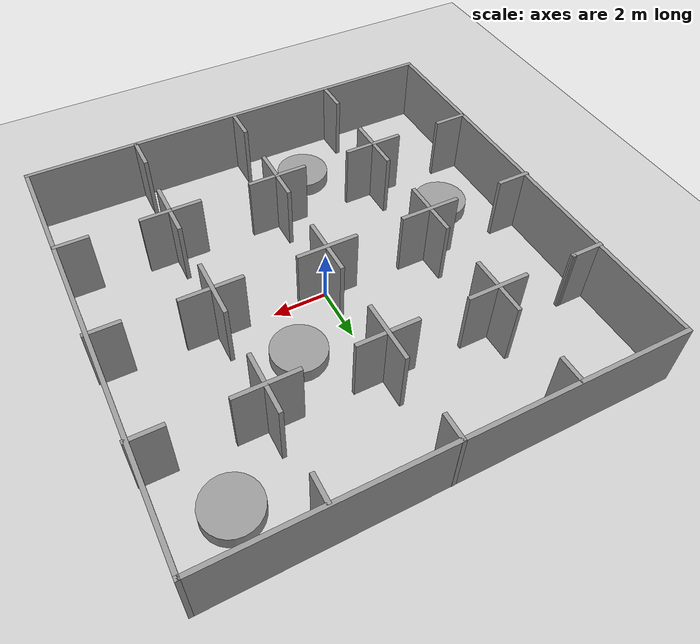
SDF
<sdf version='1.6'>
  <world name='default'>
    <!-- A global light source -->
    <include>
      <uri>model://sun</uri>
    </include>

    <!-- A ground plane -->
    <include>
      <uri>model://ground_plane</uri>
    </include>

    <physics type="ode">
      <real_time_update_rate>100.0</real_time_update_rate>
      <max_step_size>0.01</max_step_size>
      <real_time_factor>0.5</real_time_factor>
      <ode>
        <solver>
          <type>quick</type>
          <iters>150</iters>
          <precon_iters>0</precon_iters>
          <sor>1.400000</sor>
          <use_dynamic_moi_rescaling>1</use_dynamic_moi_rescaling>
        </solver>
        <constraints>
          <cfm>0.00001</cfm>
          <erp>0.2</erp>
          <contact_max_correcting_vel>2000.000000</contact_max_correcting_vel>
          <contact_surface_layer>0.01000</contact_surface_layer>
        </constraints>
      </ode>
    </physics>

    <!-- Load map -->
    <include>
      <uri>model://grid</uri>
    </include>

    <!-- Load obstacles -->
    <include>
      <uri>model://cylinders</uri>
    </include>

    <scene>
      <ambient>0.4 0.4 0.4 1</ambient>
      <background>0.7 0.7 0.7 1</background>
      <shadows>false</shadows>
    </scene>

    <gui fullscreen='0'>
      <camera name='user_camera'>
        <pose>0.8 0.0 12.0 0 1.5708 0</pose>
        <view_controller>orbit</view_controller>
      </camera>
    </gui>
  </world>
</sdf>

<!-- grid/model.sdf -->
<sdf version='1.6'>
  <model name='grid'>
    <pose frame=''>-0.018259 0.015283 0 0 -0 0</pose>
    <link name='Wall_1'>
      <collision name='Wall_1_Collision'>
        <geometry>
          <box>
            <size>16.25 0.15 2.5</size>
          </box>
        </geometry>
        <pose frame=''>0 0 1.25 0 -0 0</pose>
      </collision>
      <visual name='Wall_1_Visual'>
        <pose frame=''>0 0 1.25 0 -0 0</pose>
        <geometry>
          <box>
            <size>16.25 0.15 2.5</size>
          </box>
        </geometry>
        <material>
          <script>
            <uri>file://media/materials/scripts/gazebo.material</uri>
            <name>Gazebo/Grey</name>
          </script>
          <ambient>1 1 1 1</ambient>
        </material>
      </visual>
      <pose frame=''>-0.008852 -8.05426 0 0 -0 0</pose>
    </link>
    <link name='Wall_100'>
      <collision name='Wall_100_Collision'>
        <geometry>
          <box>
            <size>2.25 0.15 2.5</size>
          </box>
        </geometry>
        <pose frame=''>0 0 1.25 0 -0 0</pose>
      </collision>
      <visual name='Wall_100_Visual'>
        <pose frame=''>0 0 1.25 0 -0 0</pose>
        <geometry>
          <box>
            <size>2.25 0.15 2.5</size>
          </box>
        </geometry>
        <material>
          <script>
            <uri>file://media/materials/scripts/gazebo.material</uri>
            <name>Gazebo/Grey</name>
          </script>
          <ambient>1 1 1 1</ambient>
        </material>
      </visual>
      <pose frame=''>-4.03249 -4.01202 0 0 -0 0</pose>
    </link>
    <link name='Wall_102'>
      <collision name='Wall_102_Collision'>
        <geometry>
          <box>
            <size>2.25 0.15 2.5</size>
          </box>
        </geometry>
        <pose frame=''>0 0 1.25 0 -0 0</pose>
      </collision>
      <visual name='Wall_102_Visual'>
        <pose frame=''>0 0 1.25 0 -0 0</pose>
        <geometry>
          <box>
            <size>2.25 0.15 2.5</size>
          </box>
        </geometry>
        <material>
          <script>
            <uri>file://media/materials/scripts/gazebo.material</uri>
            <name>Gazebo/Grey</name>
          </script>
          <ambient>1 1 1 1</ambient>
        </material>
      </visual>
      <pose frame=''>-0.033055 0.014999 0 0 -0 0</pose>
    </link>
    <link name='Wall_104'>
      <collision name='Wall_104_Collision'>
        <geometry>
          <box>
            <size>2.25 0.15 2.5</size>
          </box>
        </geometry>
        <pose frame=''>0 0 1.25 0 -0 0</pose>
      </collision>
      <visual name='Wall_104_Visual'>
        <pose frame=''>0 0 1.25 0 -0 0</pose>
        <geometry>
          <box>
            <size>2.25 0.15 2.5</size>
          </box>
        </geometry>
        <material>
          <script>
            <uri>file://media/materials/scripts/gazebo.material</uri>
            <name>Gazebo/Grey</name>
          </script>
          <ambient>1 1 1 1</ambient>
        </material>
      </visual>
      <pose frame=''>-0.007344 0.003934 0 0 0 -1.5708</pose>
    </link>
    <link name='Wall_11'>
      <collision name='Wall_11_Collision'>
        <geometry>
          <box>
            <size>0.15 0.15 2.5</size>
          </box>
        </geometry>
        <pose frame=''>0 0 1.25 0 -0 0</pose>
      </collision>
      <visual name='Wall_11_Visual'>
        <pose frame=''>0 0 1.25 0 -0 0</pose>
        <geometry>
          <box>
            <size>0.15 0.15 2.5</size>
          </box>
        </geometry>
        <material>
          <script>
            <uri>file://media/materials/scripts/gazebo.material</uri>
            <name>Gazebo/Grey</name>
          </script>
          <ambient>1 1 1 1</ambient>
        </material>
      </visual>
      <pose frame=''>-6.98644 4.04261 0 0 -0 0</pose>
    </link>
    <link name='Wall_15'>
      <collision name='Wall_15_Collision'>
        <geometry>
          <box>
            <size>1.25 0.15 2.5</size>
          </box>
        </geometry>
        <pose frame=''>0 0 1.25 0 -0 0</pose>
      </collision>
      <visual name='Wall_15_Visual'>
        <pose frame=''>0 0 1.25 0 -0 0</pose>
        <geometry>
          <box>
            <size>1.25 0.15 2.5</size>
          </box>
        </geometry>
        <material>
          <script>
            <uri>file://media/materials/scripts/gazebo.material</uri>
            <name>Gazebo/Grey</name>
          </script>
          <ambient>1 1 1 1</ambient>
        </material>
      </visual>
      <pose frame=''>-7.5627 0.013696 0 0 -0 0</pose>
    </link>
    <link name='Wall_2'>
      <collision name='Wall_2_Collision'>
        <geometry>
          <box>
            <size>16.25 0.15 2.5</size>
          </box>
        </geometry>
        <pose frame=''>0 0 1.25 0 -0 0</pose>
      </collision>
      <visual name='Wall_2_Visual'>
        <pose frame=''>0 0 1.25 0 -0 0</pose>
        <geometry>
          <box>
            <size>16.25 0.15 2.5</size>
          </box>
        </geometry>
        <material>
          <script>
            <uri>file://media/materials/scripts/gazebo.material</uri>
            <name>Gazebo/Grey</name>
          </script>
          <ambient>1 1 1 1</ambient>
        </material>
      </visual>
      <pose frame=''>8.04115 -0.004256 0 0 -0 1.5708</pose>
    </link>
    <link name='Wall_21'>
      <collision name='Wall_21_Collision'>
        <geometry>
          <box>
            <size>2.25 0.15 2.5</size>
          </box>
        </geometry>
        <pose frame=''>0 0 1.25 0 -0 0</pose>
      </collision>
      <visual name='Wall_21_Visual'>
        <pose frame=''>0 0 1.25 0 -0 0</pose>
        <geometry>
          <box>
            <size>2.25 0.15 2.5</size>
          </box>
        </geometry>
        <material>
          <script>
            <uri>file://media/materials/scripts/gazebo.material</uri>
            <name>Gazebo/Grey</name>
          </script>
          <ambient>1 1 1 1</ambient>
        </material>
      </visual>
      <pose frame=''>-0.027047 3.99209 0 0 0 -1.5708</pose>
    </link>
    <link name='Wall_23'>
      <collision name='Wall_23_Collision'>
        <geometry>
          <box>
            <size>2.25 0.15 2.5</size>
          </box>
        </geometry>
        <pose frame=''>0 0 1.25 0 -0 0</pose>
      </collision>
      <visual name='Wall_23_Visual'>
        <pose frame=''>0 0 1.25 0 -0 0</pose>
        <geometry>
          <box>
            <size>2.25 0.15 2.5</size>
          </box>
        </geometry>
        <material>
          <script>
            <uri>file://media/materials/scripts/gazebo.material</uri>
            <name>Gazebo/Grey</name>
          </script>
          <ambient>1 1 1 1</ambient>
        </material>
      </visual>
      <pose frame=''>-0.019757 4.0163 0 0 -0 0</pose>
    </link>
    <link name='Wall_25'>
      <collision name='Wall_25_Collision'>
        <geometry>
          <box>
            <size>2.25 0.15 2.5</size>
          </box>
        </geometry>
        <pose frame=''>0 0 1.25 0 -0 0</pose>
      </collision>
      <visual name='Wall_25_Visual'>
        <pose frame=''>0 0 1.25 0 -0 0</pose>
        <geometry>
          <box>
            <size>2.25 0.15 2.5</size>
          </box>
        </geometry>
        <material>
          <script>
            <uri>file://media/materials/scripts/gazebo.material</uri>
            <name>Gazebo/Grey</name>
          </script>
          <ambient>1 1 1 1</ambient>
        </material>
      </visual>
      <pose frame=''>3.99567 3.97198 0 0 0 -1.5708</pose>
    </link>
    <link name='Wall_29'>
      <collision name='Wall_29_Collision'>
        <geometry>
          <box>
            <size>1.25 0.15 2.5</size>
          </box>
        </geometry>
        <pose frame=''>0 0 1.25 0 -0 0</pose>
      </collision>
      <visual name='Wall_29_Visual'>
        <pose frame=''>0 0 1.25 0 -0 0</pose>
        <geometry>
          <box>
            <size>1.25 0.15 2.5</size>
          </box>
        </geometry>
        <material>
          <script>
            <uri>file://media/materials/scripts/gazebo.material</uri>
            <name>Gazebo/Grey</name>
          </script>
          <ambient>1 1 1 1</ambient>
        </material>
      </visual>
      <pose frame=''>7.54259 3.99618 0 0 -0 0</pose>
    </link>
    <link name='Wall_3'>
      <collision name='Wall_3_Collision'>
        <geometry>
          <box>
            <size>16.25 0.15 2.5</size>
          </box>
        </geometry>
        <pose frame=''>0 0 1.25 0 -0 0</pose>
      </collision>
      <visual name='Wall_3_Visual'>
        <pose frame=''>0 0 1.25 0 -0 0</pose>
        <geometry>
          <box>
            <size>16.25 0.15 2.5</size>
          </box>
        </geometry>
        <material>
          <script>
            <uri>file://media/materials/scripts/gazebo.material</uri>
            <name>Gazebo/Grey</name>
          </script>
          <ambient>1 1 1 1</ambient>
        </material>
      </visual>
      <pose frame=''>-0.008852 8.04574 0 0 -0 3.14159</pose>
    </link>
    <link name='Wall_4'>
      <collision name='Wall_4_Collision'>
        <geometry>
          <box>
            <size>16.25 0.15 2.5</size>
          </box>
        </geometry>
        <pose frame=''>0 0 1.25 0 -0 0</pose>
      </collision>
      <visual name='Wall_4_Visual'>
        <pose frame=''>0 0 1.25 0 -0 0</pose>
        <geometry>
          <box>
            <size>16.25 0.15 2.5</size>
          </box>
        </geometry>
        <material>
          <script>
            <uri>file://media/materials/scripts/gazebo.material</uri>
            <name>Gazebo/Grey</name>
          </script>
          <ambient>1 1 1 1</ambient>
        </material>
      </visual>
      <pose frame=''>-8.05885 -0.004256 0 0 0 -1.5708</pose>
    </link>
    <link name='Wall_46'>
      <collision name='Wall_46_Collision'>
        <geometry>
          <box>
            <size>2.25 0.15 2.5</size>
          </box>
        </geometry>
        <pose frame=''>0 0 1.25 0 -0 0</pose>
      </collision>
      <visual name='Wall_46_Visual'>
        <pose frame=''>0 0 1.25 0 -0 0</pose>
        <geometry>
          <box>
            <size>2.25 0.15 2.5</size>
          </box>
        </geometry>
        <material>
          <script>
            <uri>file://media/materials/scripts/gazebo.material</uri>
            <name>Gazebo/Grey</name>
          </script>
          <ambient>1 1 1 1</ambient>
        </material>
      </visual>
      <pose frame=''>4.01578 -0.010512 0 0 0 -1.5708</pose>
    </link>
    <link name='Wall_48'>
      <collision name='Wall_48_Collision'>
        <geometry>
          <box>
            <size>2.25 0.15 2.5</size>
          </box>
        </geometry>
        <pose frame=''>0 0 1.25 0 -0 0</pose>
      </collision>
      <visual name='Wall_48_Visual'>
        <pose frame=''>0 0 1.25 0 -0 0</pose>
        <geometry>
          <box>
            <size>2.25 0.15 2.5</size>
          </box>
        </geometry>
        <material>
          <script>
            <uri>file://media/materials/scripts/gazebo.material</uri>
            <name>Gazebo/Grey</name>
          </script>
          <ambient>1 1 1 1</ambient>
        </material>
      </visual>
      <pose frame=''>4.0601 -0.006418 0 0 -0 0</pose>
    </link>
    <link name='Wall_50'>
      <collision name='Wall_50_Collision'>
        <geometry>
          <box>
            <size>1.25 0.15 2.5</size>
          </box>
        </geometry>
        <pose frame=''>0 0 1.25 0 -0 0</pose>
      </collision>
      <visual name='Wall_50_Visual'>
        <pose frame=''>0 0 1.25 0 -0 0</pose>
        <geometry>
          <box>
            <size>1.25 0.15 2.5</size>
          </box>
        </geometry>
        <material>
          <script>
            <uri>file://media/materials/scripts/gazebo.material</uri>
            <name>Gazebo/Grey</name>
          </script>
          <ambient>1 1 1 1</ambient>
        </material>
      </visual>
      <pose frame=''>7.5627 -0.006418 0 0 -0 0</pose>
    </link>
    <link name='Wall_52'>
      <collision name='Wall_52_Collision'>
        <geometry>
          <box>
            <size>1.25617 0.15 2.5</size>
          </box>
        </geometry>
        <pose frame=''>0 0 1.25 0 -0 0</pose>
      </collision>
      <visual name='Wall_52_Visual'>
        <pose frame=''>0 0 1.25 0 -0 0</pose>
        <geometry>
          <box>
            <size>1.25617 0.15 2.5</size>
          </box>
        </geometry>
        <material>
          <script>
            <uri>file://media/materials/scripts/gazebo.material</uri>
            <name>Gazebo/Grey</name>
          </script>
          <ambient>1 1 1 1</ambient>
        </material>
      </visual>
      <pose frame=''>-7.53951 4.03951 0 0 -0 0.005602</pose>
    </link>
    <link name='Wall_54'>
      <collision name='Wall_54_Collision'>
        <geometry>
          <box>
            <size>1 0.15 2.5</size>
          </box>
        </geometry>
        <pose frame=''>0 0 1.25 0 -0 0</pose>
      </collision>
      <visual name='Wall_54_Visual'>
        <pose frame=''>0 0 1.25 0 -0 0</pose>
        <geometry>
          <box>
            <size>1 0.15 2.5</size>
          </box>
        </geometry>
        <material>
          <script>
            <uri>file://media/materials/scripts/gazebo.material</uri>
            <name>Gazebo/Grey</name>
          </script>
          <ambient>1 1 1 1</ambient>
        </material>
      </visual>
      <pose frame=''>-4.02965 7.5939 0 0 0 -1.5708</pose>
    </link>
    <link name='Wall_57'>
      <collision name='Wall_57_Collision'>
        <geometry>
          <box>
            <size>2.25 0.15 2.5</size>
          </box>
        </geometry>
        <pose frame=''>0 0 1.25 0 -0 0</pose>
      </collision>
      <visual name='Wall_57_Visual'>
        <pose frame=''>0 0 1.25 0 -0 0</pose>
        <geometry>
          <box>
            <size>2.25 0.15 2.5</size>
          </box>
        </geometry>
        <material>
          <script>
            <uri>file://media/materials/scripts/gazebo.material</uri>
            <name>Gazebo/Grey</name>
          </script>
          <ambient>1 1 1 1</ambient>
        </material>
      </visual>
      <pose frame=''>3.95953 4.03641 0 0 -0 0</pose>
    </link>
    <link name='Wall_59'>
      <collision name='Wall_59_Collision'>
        <geometry>
          <box>
            <size>1 0.15 2.5</size>
          </box>
        </geometry>
        <pose frame=''>0 0 1.25 0 -0 0</pose>
      </collision>
      <visual name='Wall_59_Visual'>
        <pose frame=''>0 0 1.25 0 -0 0</pose>
        <geometry>
          <box>
            <size>1 0.15 2.5</size>
          </box>
        </geometry>
        <material>
          <script>
            <uri>file://media/materials/scripts/gazebo.material</uri>
            <name>Gazebo/Grey</name>
          </script>
          <ambient>1 1 1 1</ambient>
        </material>
      </visual>
      <pose frame=''>0.020979 7.62926 0 0 0 -1.5708</pose>
    </link>
    <link name='Wall_61'>
      <collision name='Wall_61_Collision'>
        <geometry>
          <box>
            <size>1 0.15 2.5</size>
          </box>
        </geometry>
        <pose frame=''>0 0 1.25 0 -0 0</pose>
      </collision>
      <visual name='Wall_61_Visual'>
        <pose frame=''>0 0 1.25 0 -0 0</pose>
        <geometry>
          <box>
            <size>1 0.15 2.5</size>
          </box>
        </geometry>
        <material>
          <script>
            <uri>file://media/materials/scripts/gazebo.material</uri>
            <name>Gazebo/Grey</name>
          </script>
          <ambient>1 1 1 1</ambient>
        </material>
      </visual>
      <pose frame=''>4.03136 7.5589 0 0 0 -1.5708</pose>
    </link>
    <link name='Wall_72'>
      <collision name='Wall_72_Collision'>
        <geometry>
          <box>
            <size>2.25 0.15 2.5</size>
          </box>
        </geometry>
        <pose frame=''>0 0 1.25 0 -0 0</pose>
      </collision>
      <visual name='Wall_72_Visual'>
        <pose frame=''>0 0 1.25 0 -0 0</pose>
        <geometry>
          <box>
            <size>2.25 0.15 2.5</size>
          </box>
        </geometry>
        <material>
          <script>
            <uri>file://media/materials/scripts/gazebo.material</uri>
            <name>Gazebo/Grey</name>
          </script>
          <ambient>1 1 1 1</ambient>
        </material>
      </visual>
      <pose frame=''>-0.022705 -4.05508 0 0 0 -1.5708</pose>
    </link>
    <link name='Wall_74'>
      <collision name='Wall_74_Collision'>
        <geometry>
          <box>
            <size>2.25 0.15 2.5</size>
          </box>
        </geometry>
        <pose frame=''>0 0 1.25 0 -0 0</pose>
      </collision>
      <visual name='Wall_74_Visual'>
        <pose frame=''>0 0 1.25 0 -0 0</pose>
        <geometry>
          <box>
            <size>2.25 0.15 2.5</size>
          </box>
        </geometry>
        <material>
          <script>
            <uri>file://media/materials/scripts/gazebo.material</uri>
            <name>Gazebo/Grey</name>
          </script>
          <ambient>1 1 1 1</ambient>
        </material>
      </visual>
      <pose frame=''>-0.052526 -3.99365 0 0 -0 0</pose>
    </link>
    <link name='Wall_76'>
      <collision name='Wall_76_Collision'>
        <geometry>
          <box>
            <size>2.25 0.15 2.5</size>
          </box>
        </geometry>
        <pose frame=''>0 0 1.25 0 -0 0</pose>
      </collision>
      <visual name='Wall_76_Visual'>
        <pose frame=''>0 0 1.25 0 -0 0</pose>
        <geometry>
          <box>
            <size>2.25 0.15 2.5</size>
          </box>
        </geometry>
        <material>
          <script>
            <uri>file://media/materials/scripts/gazebo.material</uri>
            <name>Gazebo/Grey</name>
          </script>
          <ambient>1 1 1 1</ambient>
        </material>
      </visual>
      <pose frame=''>4.03803 -4.0855 0 0 0 -1.5708</pose>
    </link>
    <link name='Wall_78'>
      <collision name='Wall_78_Collision'>
        <geometry>
          <box>
            <size>2.25 0.15 2.5</size>
          </box>
        </geometry>
        <pose frame=''>0 0 1.25 0 -0 0</pose>
      </collision>
      <visual name='Wall_78_Visual'>
        <pose frame=''>0 0 1.25 0 -0 0</pose>
        <geometry>
          <box>
            <size>2.25 0.15 2.5</size>
          </box>
        </geometry>
        <material>
          <script>
            <uri>file://media/materials/scripts/gazebo.material</uri>
            <name>Gazebo/Grey</name>
          </script>
          <ambient>1 1 1 1</ambient>
        </material>
      </visual>
      <pose frame=''>4.00821 -3.97844 0 0 -0 0</pose>
    </link>
    <link name='Wall_80'>
      <collision name='Wall_80_Collision'>
        <geometry>
          <box>
            <size>1.25 0.15 2.5</size>
          </box>
        </geometry>
        <pose frame=''>0 0 1.25 0 -0 0</pose>
      </collision>
      <visual name='Wall_80_Visual'>
        <pose frame=''>0 0 1.25 0 -0 0</pose>
        <geometry>
          <box>
            <size>1.25 0.15 2.5</size>
          </box>
        </geometry>
        <material>
          <script>
            <uri>file://media/materials/scripts/gazebo.material</uri>
            <name>Gazebo/Grey</name>
          </script>
          <ambient>1 1 1 1</ambient>
        </material>
      </visual>
      <pose frame=''>7.47272 -4.00886 0 0 -0 3.14159</pose>
    </link>
    <link name='Wall_82'>
      <collision name='Wall_82_Collision'>
        <geometry>
          <box>
            <size>1.25 0.15 2.5</size>
          </box>
        </geometry>
        <pose frame=''>0 0 1.25 0 -0 0</pose>
      </collision>
      <visual name='Wall_82_Visual'>
        <pose frame=''>0 0 1.25 0 -0 0</pose>
        <geometry>
          <box>
            <size>1.25 0.15 2.5</size>
          </box>
        </geometry>
        <material>
          <script>
            <uri>file://media/materials/scripts/gazebo.material</uri>
            <name>Gazebo/Grey</name>
          </script>
          <ambient>1 1 1 1</ambient>
        </material>
      </visual>
      <pose frame=''>-7.4672 -3.98184 0 0 -0 0</pose>
    </link>
    <link name='Wall_84'>
      <collision name='Wall_84_Collision'>
        <geometry>
          <box>
            <size>1.25 0.15 2.5</size>
          </box>
        </geometry>
        <pose frame=''>0 0 1.25 0 -0 0</pose>
      </collision>
      <visual name='Wall_84_Visual'>
        <pose frame=''>0 0 1.25 0 -0 0</pose>
        <geometry>
          <box>
            <size>1.25 0.15 2.5</size>
          </box>
        </geometry>
        <material>
          <script>
            <uri>file://media/materials/scripts/gazebo.material</uri>
            <name>Gazebo/Grey</name>
          </script>
          <ambient>1 1 1 1</ambient>
        </material>
      </visual>
      <pose frame=''>-4.03128 -7.48705 0 0 -0 1.5708</pose>
    </link>
    <link name='Wall_86'>
      <collision name='Wall_86_Collision'>
        <geometry>
          <box>
            <size>1.25 0.15 2.5</size>
          </box>
        </geometry>
        <pose frame=''>0 0 1.25 0 -0 0</pose>
      </collision>
      <visual name='Wall_86_Visual'>
        <pose frame=''>0 0 1.25 0 -0 0</pose>
        <geometry>
          <box>
            <size>1.25 0.15 2.5</size>
          </box>
        </geometry>
        <material>
          <script>
            <uri>file://media/materials/scripts/gazebo.material</uri>
            <name>Gazebo/Grey</name>
          </script>
          <ambient>1 1 1 1</ambient>
        </material>
      </visual>
      <pose frame=''>-0.017571 -7.46132 0 0 -0 1.5708</pose>
    </link>
    <link name='Wall_88'>
      <collision name='Wall_88_Collision'>
        <geometry>
          <box>
            <size>1.25 0.15 2.5</size>
          </box>
        </geometry>
        <pose frame=''>0 0 1.25 0 -0 0</pose>
      </collision>
      <visual name='Wall_88_Visual'>
        <pose frame=''>0 0 1.25 0 -0 0</pose>
        <geometry>
          <box>
            <size>1.25 0.15 2.5</size>
          </box>
        </geometry>
        <material>
          <script>
            <uri>file://media/materials/scripts/gazebo.material</uri>
            <name>Gazebo/Grey</name>
          </script>
          <ambient>1 1 1 1</ambient>
        </material>
      </visual>
      <pose frame=''>3.97041 -7.43559 0 0 -0 1.5708</pose>
    </link>
    <link name='Wall_90'>
      <collision name='Wall_90_Collision'>
        <geometry>
          <box>
            <size>2.25 0.15 2.5</size>
          </box>
        </geometry>
        <pose frame=''>0 0 1.25 0 -0 0</pose>
      </collision>
      <visual name='Wall_90_Visual'>
        <pose frame=''>0 0 1.25 0 -0 0</pose>
        <geometry>
          <box>
            <size>2.25 0.15 2.5</size>
          </box>
        </geometry>
        <material>
          <script>
            <uri>file://media/materials/scripts/gazebo.material</uri>
            <name>Gazebo/Grey</name>
          </script>
          <ambient>1 1 1 1</ambient>
        </material>
      </visual>
      <pose frame=''>-4.01687 4.02651 0 0 -0 0</pose>
    </link>
    <link name='Wall_92'>
      <collision name='Wall_92_Collision'>
        <geometry>
          <box>
            <size>2.25 0.15 2.5</size>
          </box>
        </geometry>
        <pose frame=''>0 0 1.25 0 -0 0</pose>
      </collision>
      <visual name='Wall_92_Visual'>
        <pose frame=''>0 0 1.25 0 -0 0</pose>
        <geometry>
          <box>
            <size>2.25 0.15 2.5</size>
          </box>
        </geometry>
        <material>
          <script>
            <uri>file://media/materials/scripts/gazebo.material</uri>
            <name>Gazebo/Grey</name>
          </script>
          <ambient>1 1 1 1</ambient>
        </material>
      </visual>
      <pose frame=''>-4.03334 3.99789 0 0 0 -1.5708</pose>
    </link>
    <link name='Wall_94'>
      <collision name='Wall_94_Collision'>
        <geometry>
          <box>
            <size>2.25 0.15 2.5</size>
          </box>
        </geometry>
        <pose frame=''>0 0 1.25 0 -0 0</pose>
      </collision>
      <visual name='Wall_94_Visual'>
        <pose frame=''>0 0 1.25 0 -0 0</pose>
        <geometry>
          <box>
            <size>2.25 0.15 2.5</size>
          </box>
        </geometry>
        <material>
          <script>
            <uri>file://media/materials/scripts/gazebo.material</uri>
            <name>Gazebo/Grey</name>
          </script>
          <ambient>1 1 1 1</ambient>
        </material>
      </visual>
      <pose frame=''>-4.0191 0.017137 0 0 -0 0</pose>
    </link>
    <link name='Wall_96'>
      <collision name='Wall_96_Collision'>
        <geometry>
          <box>
            <size>2.25 0.15 2.5</size>
          </box>
        </geometry>
        <pose frame=''>0 0 1.25 0 -0 0</pose>
      </collision>
      <visual name='Wall_96_Visual'>
        <pose frame=''>0 0 1.25 0 -0 0</pose>
        <geometry>
          <box>
            <size>2.25 0.15 2.5</size>
          </box>
        </geometry>
        <material>
          <script>
            <uri>file://media/materials/scripts/gazebo.material</uri>
            <name>Gazebo/Grey</name>
          </script>
          <ambient>1 1 1 1</ambient>
        </material>
      </visual>
      <pose frame=''>-4.03293 0.003313 0 0 0 -1.5708</pose>
    </link>
    <link name='Wall_98'>
      <collision name='Wall_98_Collision'>
        <geometry>
          <box>
            <size>2.25 0.15 2.5</size>
          </box>
        </geometry>
        <pose frame=''>0 0 1.25 0 -0 0</pose>
      </collision>
      <visual name='Wall_98_Visual'>
        <pose frame=''>0 0 1.25 0 -0 0</pose>
        <geometry>
          <box>
            <size>2.25 0.15 2.5</size>
          </box>
        </geometry>
        <material>
          <script>
            <uri>file://media/materials/scripts/gazebo.material</uri>
            <name>Gazebo/Grey</name>
          </script>
          <ambient>1 1 1 1</ambient>
        </material>
      </visual>
      <pose frame=''>-4.03437 -3.98631 0 0 0 -1.5708</pose>
    </link>
    <static>1</static>
  </model>
</sdf>

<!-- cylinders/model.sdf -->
<sdf version='1.6'>
  <model name='cylinders'>
    <link name='link_0'>
      <pose frame=''>6 6 0 0 -0 0</pose>
      <inertial>
        <mass>4.0182</mass>
        <inertia>
          <ixx>1.34397</ixx>
          <ixy>0</ixy>
          <ixz>0</ixz>
          <iyy>1.34397</iyy>
          <iyz>0</iyz>
          <izz>2.01825</izz>
        </inertia>
        <pose frame=''>0 0 0 0 -0 0</pose>
      </inertial>
      <self_collide>0</self_collide>
      <kinematic>0</kinematic>
      <gravity>1</gravity>
      <visual name='visual'>
        <pose frame=''>0 0 0 0 -0 0</pose>
        <geometry>
          <cylinder>
            <radius>1.00228</radius>
            <length>1</length>
          </cylinder>
        </geometry>
        <material>
          <lighting>1</lighting>
          <script>
            <uri>file://media/materials/scripts/gazebo.material</uri>
            <name>Gazebo/Grey</name>
          </script>
          <ambient>1 1 1 1</ambient>
          <diffuse>0.7 0.7 0.7 1</diffuse>
          <specular>0.01 0.01 0.01 1</specular>
          <emissive>0 0 0 1</emissive>
          <shader type='vertex'>
            <normal_map>__default__</normal_map>
          </shader>
        </material>
        <cast_shadows>1</cast_shadows>
        <transparency>0</transparency>
      </visual>
      <collision name='collision'>
        <laser_retro>0</laser_retro>
        <max_contacts>10</max_contacts>
        <pose frame=''>0 0 0 0 -0 0</pose>
        <geometry>
          <cylinder>
            <radius>1.00228</radius>
            <length>1</length>
          </cylinder>
        </geometry>
        <surface>
          <friction>
            <ode>
              <mu>1</mu>
              <mu2>1</mu2>
              <fdir1>0 0 0</fdir1>
              <slip1>0</slip1>
              <slip2>0</slip2>
            </ode>
            <torsional>
              <coefficient>1</coefficient>
              <patch_radius>0</patch_radius>
              <surface_radius>0</surface_radius>
              <use_patch_radius>1</use_patch_radius>
              <ode>
                <slip>0</slip>
              </ode>
            </torsional>
          </friction>
          <bounce>
            <restitution_coefficient>0</restitution_coefficient>
            <threshold>1e+06</threshold>
          </bounce>
          <contact>
            <collide_without_contact>0</collide_without_contact>
            <collide_without_contact_bitmask>1</collide_without_contact_bitmask>
            <collide_bitmask>1</collide_bitmask>
            <ode>
              <soft_cfm>0</soft_cfm>
              <soft_erp>0.2</soft_erp>
              <kp>1e+13</kp>
              <kd>1</kd>
              <max_vel>0.01</max_vel>
              <min_depth>0</min_depth>
            </ode>
            <bullet>
              <split_impulse>1</split_impulse>
              <split_impulse_penetration_threshold>-0.01</split_impulse_penetration_threshold>
              <soft_cfm>0</soft_cfm>
              <soft_erp>0.2</soft_erp>
              <kp>1e+13</kp>
              <kd>1</kd>
            </bullet>
          </contact>
        </surface>
      </collision>
    </link>
    <link name='link_1'>
      <pose frame=''>2 2 0 0 -0 0</pose>
      <inertial>
        <mass>3.90973</mass>
        <inertia>
          <ixx>1.28118</ixx>
          <ixy>0</ixy>
          <ixz>0</ixz>
          <iyy>1.28118</iyy>
          <iyz>0</iyz>
          <izz>1.91075</izz>
        </inertia>
        <pose frame=''>0 0 0 0 -0 0</pose>
      </inertial>
      <self_collide>0</self_collide>
      <kinematic>0</kinematic>
      <gravity>1</gravity>
      <visual name='visual'>
        <pose frame=''>0 0 0 0 -0 0</pose>
        <geometry>
          <cylinder>
            <radius>0.988649</radius>
            <length>1</length>
          </cylinder>
        </geometry>
        <material>
          <lighting>1</lighting>
          <script>
            <uri>file://media/materials/scripts/gazebo.material</uri>
            <name>Gazebo/Grey</name>
          </script>
          <ambient>1 1 1 1</ambient>
          <diffuse>0.7 0.7 0.7 1</diffuse>
          <specular>0.01 0.01 0.01 1</specular>
          <emissive>0 0 0 1</emissive>
          <shader type='vertex'>
            <normal_map>__default__</normal_map>
          </shader>
        </material>
        <cast_shadows>1</cast_shadows>
        <transparency>0</transparency>
      </visual>
      <collision name='collision'>
        <laser_retro>0</laser_retro>
        <max_contacts>10</max_contacts>
        <pose frame=''>0 0 0 0 -0 0</pose>
        <geometry>
          <cylinder>
            <radius>0.988649</radius>
            <length>1</length>
          </cylinder>
        </geometry>
        <surface>
          <friction>
            <ode>
              <mu>1</mu>
              <mu2>1</mu2>
              <fdir1>0 0 0</fdir1>
              <slip1>0</slip1>
              <slip2>0</slip2>
            </ode>
            <torsional>
              <coefficient>1</coefficient>
              <patch_radius>0</patch_radius>
              <surface_radius>0</surface_radius>
              <use_patch_radius>1</use_patch_radius>
              <ode>
                <slip>0</slip>
              </ode>
            </torsional>
          </friction>
          <bounce>
            <restitution_coefficient>0</restitution_coefficient>
            <threshold>1e+06</threshold>
          </bounce>
          <contact>
            <collide_without_contact>0</collide_without_contact>
            <collide_without_contact_bitmask>1</collide_without_contact_bitmask>
            <collide_bitmask>1</collide_bitmask>
            <ode>
              <soft_cfm>0</soft_cfm>
              <soft_erp>0.2</soft_erp>
              <kp>1e+13</kp>
              <kd>1</kd>
              <max_vel>0.01</max_vel>
              <min_depth>0</min_depth>
            </ode>
            <bullet>
              <split_impulse>1</split_impulse>
              <split_impulse_penetration_threshold>-0.01</split_impulse_penetration_threshold>
              <soft_cfm>0</soft_cfm>
              <soft_erp>0.2</soft_erp>
              <kp>1e+13</kp>
              <kd>1</kd>
            </bullet>
          </contact>
        </surface>
      </collision>
    </link>
    <link name='link_2'>
      <pose frame=''>-6 -2 0 0 -0 0</pose>
      <inertial>
        <mass>4.00437</mass>
        <inertia>
          <ixx>1.33588</ixx>
          <ixy>0</ixy>
          <ixz>0</ixz>
          <iyy>1.33588</iyy>
          <iyz>0</iyz>
          <izz>2.00437</izz>
        </inertia>
        <pose frame=''>0 0 0 0 -0 0</pose>
      </inertial>
      <self_collide>0</self_collide>
      <kinematic>0</kinematic>
      <gravity>1</gravity>
      <visual name='visual'>
        <pose frame=''>0 0 0 0 -0 0</pose>
        <geometry>
          <cylinder>
            <radius>1.00055</radius>
            <length>1</length>
          </cylinder>
        </geometry>
        <material>
          <lighting>1</lighting>
          <script>
            <uri>file://media/materials/scripts/gazebo.material</uri>
            <name>Gazebo/Grey</name>
          </script>
          <ambient>1 1 1 1</ambient>
          <diffuse>0.7 0.7 0.7 1</diffuse>
          <specular>0.01 0.01 0.01 1</specular>
          <emissive>0 0 0 1</emissive>
          <shader type='vertex'>
            <normal_map>__default__</normal_map>
          </shader>
        </material>
        <cast_shadows>1</cast_shadows>
        <transparency>0</transparency>
      </visual>
      <collision name='collision'>
        <laser_retro>0</laser_retro>
        <max_contacts>10</max_contacts>
        <pose frame=''>0 0 0 0 -0 0</pose>
        <geometry>
          <cylinder>
            <radius>1.00055</radius>
            <length>1</length>
          </cylinder>
        </geometry>
        <surface>
          <friction>
            <ode>
              <mu>1</mu>
              <mu2>1</mu2>
              <fdir1>0 0 0</fdir1>
              <slip1>0</slip1>
              <slip2>0</slip2>
            </ode>
            <torsional>
              <coefficient>1</coefficient>
              <patch_radius>0</patch_radius>
              <surface_radius>0</surface_radius>
              <use_patch_radius>1</use_patch_radius>
              <ode>
                <slip>0</slip>
              </ode>
            </torsional>
          </friction>
          <bounce>
            <restitution_coefficient>0</restitution_coefficient>
            <threshold>1e+06</threshold>
          </bounce>
          <contact>
            <collide_without_contact>0</collide_without_contact>
            <collide_without_contact_bitmask>1</collide_without_contact_bitmask>
            <collide_bitmask>1</collide_bitmask>
            <ode>
              <soft_cfm>0</soft_cfm>
              <soft_erp>0.2</soft_erp>
              <kp>1e+13</kp>
              <kd>1</kd>
              <max_vel>0.01</max_vel>
              <min_depth>0</min_depth>
            </ode>
            <bullet>
              <split_impulse>1</split_impulse>
              <split_impulse_penetration_threshold>-0.01</split_impulse_penetration_threshold>
              <soft_cfm>0</soft_cfm>
              <soft_erp>0.2</soft_erp>
              <kp>1e+13</kp>
              <kd>1</kd>
            </bullet>
          </contact>
        </surface>
      </collision>
    </link>
    <link name='link_3'>
      <pose frame=''>-2 -6 0 0 -0 0</pose>
      <inertial>
        <mass>3.96789</mass>
        <inertia>
          <ixx>1.31467</ixx>
          <ixy>0</ixy>
          <ixz>0</ixz>
          <iyy>1.31467</iyy>
          <iyz>0</iyz>
          <izz>1.96802</izz>
        </inertia>
        <pose frame=''>0 0 0 0 -0 0</pose>
      </inertial>
      <self_collide>0</self_collide>
      <kinematic>0</kinematic>
      <gravity>1</gravity>
      <visual name='visual'>
        <pose frame=''>0 0 0 0 -0 0</pose>
        <geometry>
          <cylinder>
            <radius>0.995977</radius>
            <length>1</length>
          </cylinder>
        </geometry>
        <material>
          <lighting>1</lighting>
          <script>
            <uri>file://media/materials/scripts/gazebo.material</uri>
            <name>Gazebo/Grey</name>
          </script>
          <ambient>1 1 1 1</ambient>
          <diffuse>0.7 0.7 0.7 1</diffuse>
          <specular>0.01 0.01 0.01 1</specular>
          <emissive>0 0 0 1</emissive>
          <shader type='vertex'>
            <normal_map>__default__</normal_map>
          </shader>
        </material>
        <cast_shadows>1</cast_shadows>
        <transparency>0</transparency>
      </visual>
      <collision name='collision'>
        <laser_retro>0</laser_retro>
        <max_contacts>10</max_contacts>
        <pose frame=''>0 0 0 0 -0 0</pose>
        <geometry>
          <cylinder>
            <radius>0.995977</radius>
            <length>1</length>
          </cylinder>
        </geometry>
        <surface>
          <friction>
            <ode>
              <mu>1</mu>
              <mu2>1</mu2>
              <fdir1>0 0 0</fdir1>
              <slip1>0</slip1>
              <slip2>0</slip2>
            </ode>
            <torsional>
              <coefficient>1</coefficient>
              <patch_radius>0</patch_radius>
              <surface_radius>0</surface_radius>
              <use_patch_radius>1</use_patch_radius>
              <ode>
                <slip>0</slip>
              </ode>
            </torsional>
          </friction>
          <bounce>
            <restitution_coefficient>0</restitution_coefficient>
            <threshold>1e+06</threshold>
          </bounce>
          <contact>
            <collide_without_contact>0</collide_without_contact>
            <collide_without_contact_bitmask>1</collide_without_contact_bitmask>
            <collide_bitmask>1</collide_bitmask>
            <ode>
              <soft_cfm>0</soft_cfm>
              <soft_erp>0.2</soft_erp>
              <kp>1e+13</kp>
              <kd>1</kd>
              <max_vel>0.01</max_vel>
              <min_depth>0</min_depth>
            </ode>
            <bullet>
              <split_impulse>1</split_impulse>
              <split_impulse_penetration_threshold>-0.01</split_impulse_penetration_threshold>
              <soft_cfm>0</soft_cfm>
              <soft_erp>0.2</soft_erp>
              <kp>1e+13</kp>
              <kd>1</kd>
            </bullet>
          </contact>
        </surface>
      </collision>
    </link>
    <static>0</static>
    <allow_auto_disable>1</allow_auto_disable>
  </model>
</sdf>
